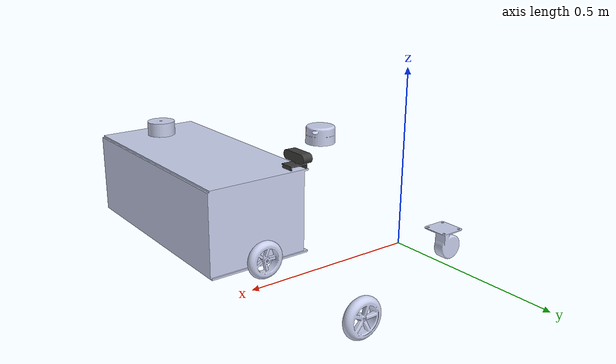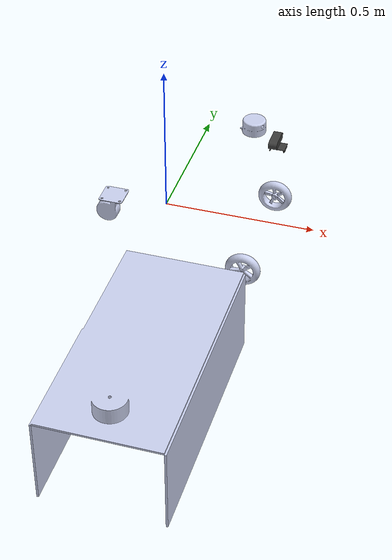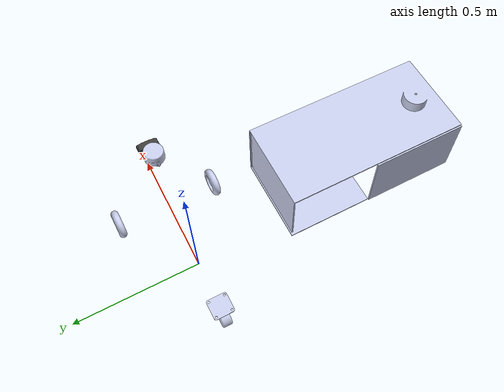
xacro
<?xml version="1.0" encoding="utf-8"?>
<robot
  name="rudolph_urdf">
  <link
    name="base_footprint"/>

  <link
    name="base_link">
    <inertial>
      <origin
        xyz="-0.198744010402315 0.000174583761450766 0.143169546471357"
        rpy="0 0 0" />
      <mass
        value="19.3571103115098" />
      <inertia
        ixx="0.105690677659532"
        ixy="0.000103743513668881"
        ixz="3.76767258085507E-05"
        iyy="0.322483556824621"
        iyz="-3.3367514082637E-06"
        izz="0.34473391633269" />
    </inertial>
    <visual>
      <origin
        xyz="0 0 0"
        rpy="0 0 0" />
      <geometry>
        <mesh
          filename="package://rudolph_description/meshes/base_link.STL" />
      </geometry>
      <material
        name="">
        <color
          rgba="0.792156862745098 0.819607843137255 0.933333333333333 1" />
      </material>
    </visual>
    <collision>
      <origin
        xyz="0 0 0"
        rpy="0 0 0" />
      <geometry>
        <mesh
          filename="package://rudolph_description/meshes/base_link.STL" />
      </geometry>
    </collision>
  </link>
  <joint
    name="base_joint"
    type="fixed">
    <origin
      xyz="0.31976 0 -0.0431"
      rpy="0 0 0" />
    <parent
      link="base_footprint" />
    <child
      link="base_link" />
    <axis
      xyz="0 0 0" />
  </joint>
  <link
    name="wheel_left_link">
    <inertial>
      <origin
        xyz="5.62079272015126E-10 7.35240311688923E-09 -0.00280091246570427"
        rpy="0 0 0" />
      <mass
        value="0.16892790393776" />
      <inertia
        ixx="0.000180293267647714"
        ixy="3.4968846919059E-10"
        ixz="-5.92226218447572E-13"
        iyy="0.0001802932498828"
        iyz="-1.35428150724921E-11"
        izz="0.000340883721564796" />
    </inertial>
    <visual>
      <origin
        xyz="0 0 0"
        rpy="0 0 0" />
      <geometry>
        <mesh
          filename="package://rudolph_description/meshes/wheel_left_link.STL" />
      </geometry>
      <material
        name="">
        <color
          rgba="0.792156862745098 0.819607843137255 0.933333333333333 1" />
      </material>
    </visual>
    <collision>
      <origin
        xyz="0 0 0"
        rpy="0 0 0" />
      <geometry>
        <mesh
          filename="package://rudolph_description/meshes/wheel_left_link.STL" />
      </geometry>
    </collision>
  </link>
  <joint
    name="wheel_left_joint"
    type="continuous">
    <origin
      xyz="0.00024307 0.2084 0.00010011"
      rpy="-1.5708 0 0" />
    <parent
      link="base_link" />
    <child
      link="wheel_left_link" />
    <axis
      xyz="0 0 1" />
  </joint>
  <link
    name="wheel_right_link">
    <inertial>
      <origin
        xyz="5.6243787405208E-10 -7.35308421095926E-09 0.00280091246576517"
        rpy="0 0 0" />
      <mass
        value="0.168927903936188" />
      <inertia
        ixx="0.000180293267644942"
        ixy="-3.49688656954827E-10"
        ixz="5.9278420728745E-13"
        iyy="0.000180293249883525"
        iyz="-1.35438613193214E-11"
        izz="0.000340883721562999" />
    </inertial>
    <visual>
      <origin
        xyz="0 0 0"
        rpy="0 0 0" />
      <geometry>
        <mesh
          filename="package://rudolph_description/meshes/wheel_right_link.STL" />
      </geometry>
      <material
        name="">
        <color
          rgba="0.792156862745098 0.819607843137255 0.933333333333333 1" />
      </material>
    </visual>
    <collision>
      <origin
        xyz="0 0 0"
        rpy="0 0 0" />
      <geometry>
        <mesh
          filename="package://rudolph_description/meshes/wheel_right_link.STL" />
      </geometry>
    </collision>
  </link>
  <joint
    name="wheel_right_joint"
    type="continuous">
    <origin
      xyz="0.00024307 -0.2084 0.00010011"
      rpy="-1.5708 0 0" />
    <parent
      link="base_link" />
    <child
      link="wheel_right_link" />
    <axis
      xyz="0 0 1" />
  </joint>
  <link
    name="caster_back_link">
    <inertial>
      <origin
        xyz="0.00712939689443792 -0.0131605253570176 8.95324089172922E-09"
        rpy="0 0 0" />
      <mass
        value="0.205322871078586" />
      <inertia
        ixx="0.000181440969274869"
        ixy="3.79381726757463E-05"
        ixz="-4.39393075157974E-11"
        iyy="0.000117632047892803"
        iyz="2.10111827244022E-12"
        izz="0.000234531410256484" />
    </inertial>
    <visual>
      <origin
        xyz="0 0 0"
        rpy="0 0 0" />
      <geometry>
        <mesh
          filename="package://rudolph_description/meshes/caster_back_link.STL" />
      </geometry>
      <material
        name="">
        <color
          rgba="0.792156862745098 0.819607843137255 0.933333333333333 1" />
      </material>
    </visual>
    <collision>
      <origin
        xyz="0 0 0"
        rpy="0 0 0" />
      <geometry>
        <mesh
          filename="package://rudolph_description/meshes/caster_back_link.STL" />
      </geometry>
    </collision>
  </link>
  <joint
    name="caster_back_joint"
    type="fixed">
    <origin
      xyz="-0.52941 0 -0.022461"
      rpy="-1.5708 0 0" />
    <parent
      link="base_link" />
    <child
      link="caster_back_link" />
    <axis
      xyz="0 0 0" />
  </joint>
  <link
    name="base_scan">
    <inertial>
      <origin
        xyz="-0.000552750712992545 -0.000128923720693497 0.0237777439332361"
        rpy="0 0 0" />
      <mass
        value="0.170559484388225" />
      <inertia
        ixx="6.25710200235042E-05"
        ixy="3.56061446742664E-07"
        ixz="1.67650678582061E-08"
        iyy="6.29968977755568E-05"
        iyz="2.97146825579962E-08"
        izz="0.000112518091350319" />
    </inertial>
    <visual>
      <origin
        xyz="0 0 0"
        rpy="0 0 0" />
      <geometry>
        <mesh
          filename="package://rudolph_description/meshes/base_scan.STL" />
      </geometry>
      <material
        name="">
        <color
          rgba="0.792156862745098 0.819607843137255 0.933333333333333 1" />
      </material>
    </visual>
    <collision>
      <origin
        xyz="0 0 0"
        rpy="0 0 0" />
      <geometry>
        <mesh
          filename="package://rudolph_description/meshes/base_scan.STL" />
      </geometry>
    </collision>
  </link>
  <joint
    name="scan_joint"
    type="fixed">
    <origin
      xyz="-0.027357 0 0.3851"
      rpy="0 0 0" />
    <parent
      link="base_link" />
    <child
      link="base_scan" />
    <axis
      xyz="0 0 0" />
  </joint>
  <link
    name="camera_link">
    <inertial>
      <origin
        xyz="0.00593852099291015 5.09399578095537E-07 0.00784055172380355"
        rpy="0 0 0" />
      <mass
        value="0.0581895549431422" />
      <inertia
        ixx="2.149536557957E-05"
        ixy="-4.25271059883842E-10"
        ixz="-4.30001305453022E-08"
        iyy="7.2478764849786E-06"
        iyz="3.06968376267082E-10"
        izz="2.484439535279E-05" />
    </inertial>
    <visual>
      <origin
        xyz="0 0 0"
        rpy="0 0 0" />
      <geometry>
        <mesh
          filename="package://rudolph_description/meshes/camera_link.STL" />
      </geometry>
      <material
        name="">
        <color
          rgba="0.23921568627451 0.23921568627451 0.235294117647059 1" />
      </material>
    </visual>
    <collision>
      <origin
        xyz="0 0 0"
        rpy="0 0 0" />
      <geometry>
        <mesh
          filename="package://rudolph_description/meshes/camera_link.STL" />
      </geometry>
    </collision>
  </link>
  <joint
    name="camera_joint"
    type="fixed">
    <origin
      xyz="0.053746 0.00059075 0.3481"
      rpy="0 0 0" />
    <parent
      link="base_link" />
    <child
      link="camera_link" />
    <axis
      xyz="0 0 0" />
  </joint>

  <joint name="imu_joint" type="fixed">
    <parent link="base_link"/>
    <child link="imu_link"/>
    <origin xyz="-0.032 0 0.068" rpy="0 0 0"/>
  </joint>

  <link name="imu_link"/>

</robot>
